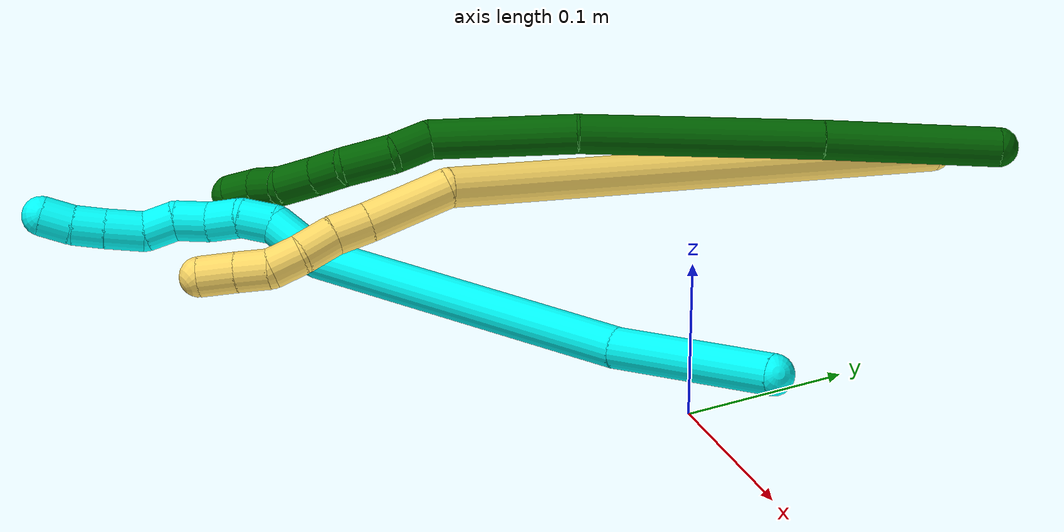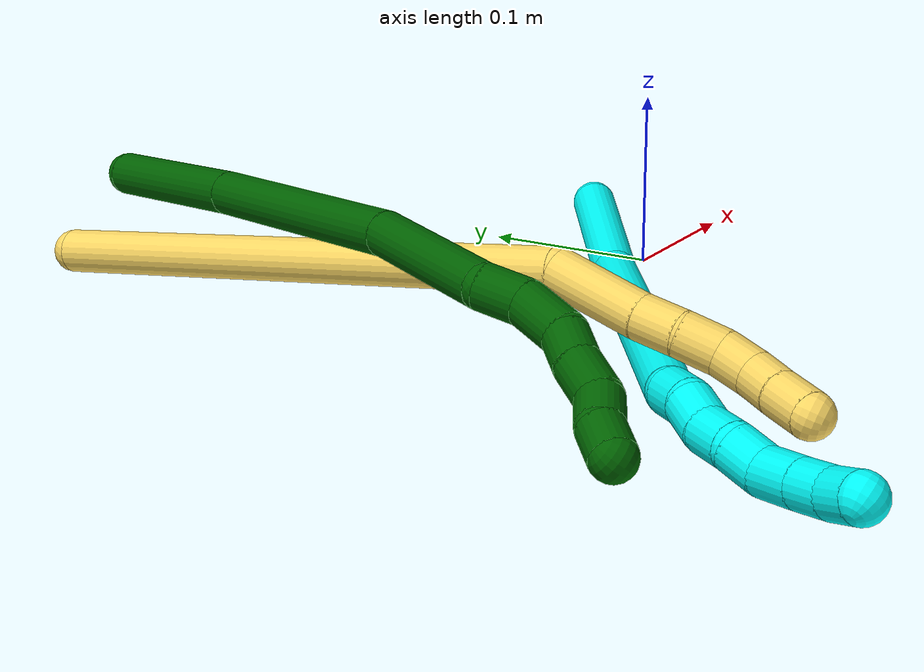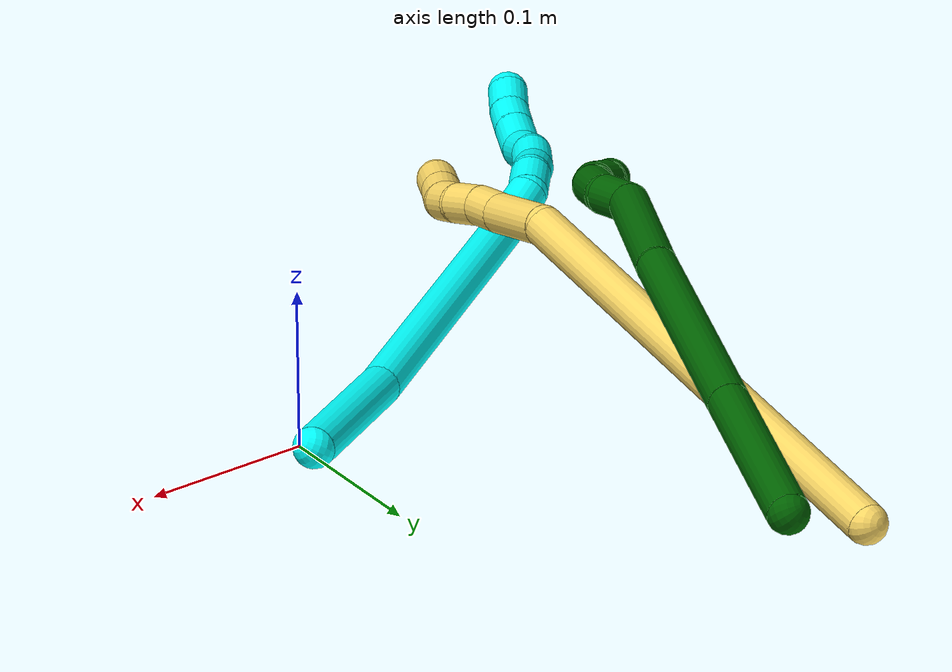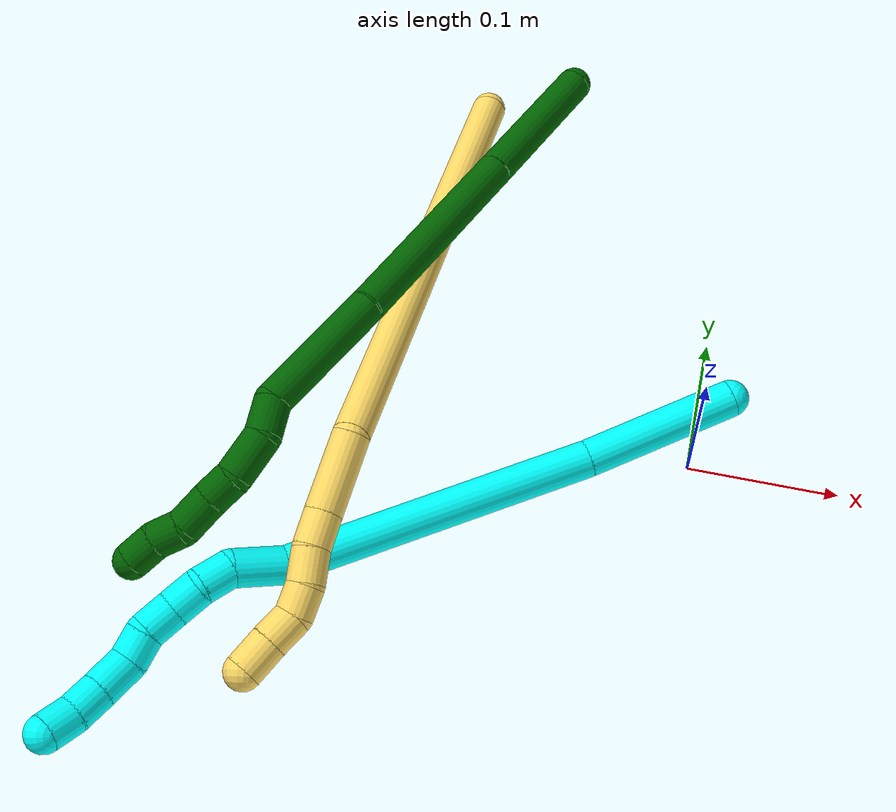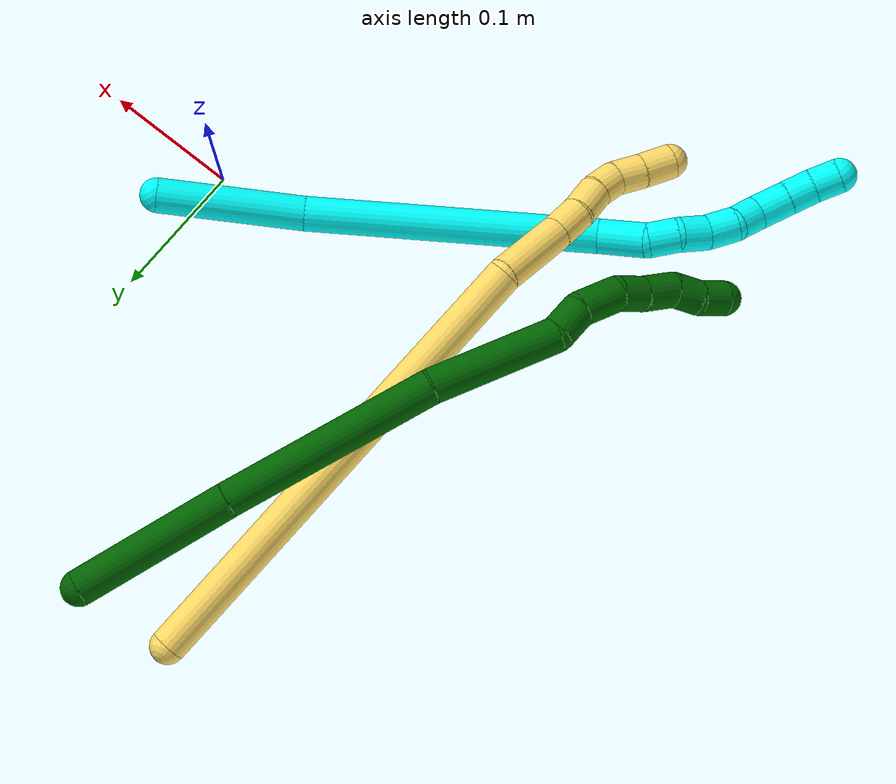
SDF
<sdf version="1.7">
 <world name="default">
  <model name="photoneo_s_sensor">
   <static>1</static>
   <pose>0 0 2 1.57079 1.57079 3.14159</pose>
   <link name="link">
    <inertial><mass>0.1</mass></inertial>
    <sensor name="sensor" type="depth">
     <update_rate>30</update_rate>
     <camera>
      <horizontal_fov>1.22</horizontal_fov>
      <image><width>1920</width><height>1200</height><format>B8G8R8</format></image>
      <clip><near>0.1</near><far>4</far></clip>
      <depth_camera><output>points</output></depth_camera>
     </camera>
     <plugin name="camera_plugin" filename="libgazebo_ros_depth_camera.so">
      <baseline>0.2</baseline>
      <alwaysOn>1</alwaysOn>
      <updateRate>0.0</updateRate>
      <cameraName>camera_ir</cameraName>
      <imageTopicName>/camera/color/image_raw</imageTopicName>
      <cameraInfoTopicName>/camera/color/camera_info</cameraInfoTopicName>
      <depthImageTopicName>/camera/depth/image_raw</depthImageTopicName>
      <depthImageCameraInfoTopicName>/camera/depth/camera_info</depthImageCameraInfoTopicName>
      <pointCloudTopicName>/camera/depth/points</pointCloudTopicName>
      <frameName>fr_optical</frameName>
      <pointCloudCutoff>0.1</pointCloudCutoff>
      <pointCloudCutoffMax>2.0</pointCloudCutoffMax>
      <distortionK1>0</distortionK1>
      <distortionK2>0</distortionK2>
      <distortionK3>0</distortionK3>
      <distortionT1>0</distortionT1>
      <distortionT2>0</distortionT2>
      <CxPrime>0</CxPrime>
      <Cx>0</Cx>
      <Cy>0</Cy>
      <focalLength>0</focalLength>
      <hackBaseline>0</hackBaseline>
     </plugin>
    </sensor>
   </link>
  </model>
  <model name="bin">
   <static>1</static>
   <link name="bottom">
    <collision name="collision-bottom">
     <pose>0 0 -0.01 0 -0 0</pose>
     <geometry><box><size>0.8 0.6 0.02</size></box></geometry>
     <surface>
      <friction><ode><mu>100</mu><mu2>100</mu2></ode></friction>
      <contact><collide_bitmask>65535</collide_bitmask></contact>
     </surface>
    </collision>
   </link>
   <link name="west_wall">
    <collision name="collision-west_wall">
     <pose>-0.41 0 0.1 0 -0 0</pose>
     <geometry><box><size>0.02 0.6 0.2</size></box></geometry>
     <surface>
      <friction><ode><mu>100</mu><mu2>100</mu2></ode></friction>
      <contact><collide_bitmask>65535</collide_bitmask></contact>
     </surface>
    </collision>
   </link>
   <link name="east_wall">
    <collision name="collision-east_wall">
     <pose>0.41 0 0.1 0 -0 0</pose>
     <geometry><box><size>0.02 0.6 0.2</size></box></geometry>
     <surface>
      <friction><ode><mu>100</mu><mu2>100</mu2></ode></friction>
      <contact><collide_bitmask>65535</collide_bitmask></contact>
     </surface>
    </collision>
   </link>
   <link name="south_wall">
    <collision name="collision-south_wall">
     <pose>0 -0.31 0.1 0 -0 0</pose>
     <geometry><box><size>0.8 0.02 0.2</size></box></geometry>
     <surface>
      <friction><ode><mu>100</mu><mu2>100</mu2></ode></friction>
      <contact><collide_bitmask>65535</collide_bitmask></contact>
     </surface>
    </collision>
   </link>
   <link name="north_wall">
    <collision name="collision-north_wall">
     <pose>0 0.31 0.1 0 -0 0</pose>
     <geometry><box><size>0.8 0.02 0.2</size></box></geometry>
     <surface>
      <friction><ode><mu>100</mu><mu2>100</mu2></ode></friction>
      <contact><collide_bitmask>65535</collide_bitmask></contact>
     </surface>
    </collision>
   </link>
  </model>
  <model name="3">
   <static>0</static>
   <link name="3">
    <collision name="collision-cylinder-e_1_1_4">
     <pose>-0.027899 -0.029246 0.033125 0.723285 -0.563164 -0.217981</pose>
     <geometry><cylinder><radius>0.0125</radius><length>0.104517</length></cylinder></geometry>
     <surface>
      <friction><ode><mu>1.16</mu><mu2>1.16</mu2><slip1>0</slip1><slip2>0</slip2></ode></friction>
      <contact><ode><kp>1e+06</kp><kd>1</kd><max_vel>0</max_vel><min_depth>0.001</min_depth></ode></contact>
     </surface>
    </collision>
    <visual name="visual-cylinder-e_1_1_4">
     <pose>-0.027899 -0.029246 0.033125 0.723285 -0.563164 -0.217981</pose>
     <geometry><cylinder><radius>0.0125</radius><length>0.104517</length></cylinder></geometry>
     <material><ambient>0.003922 1 0.996078 1</ambient></material>
    </visual>
    <collision name="collision-cylinder-e_2_4_5">
     <pose>-0.107598 -0.127916 0.124961 0.868806 -0.517866 -0.244561</pose>
     <geometry><cylinder><radius>0.0125</radius><length>0.209284</length></cylinder></geometry>
     <surface>
      <friction><ode><mu>1.16</mu><mu2>1.16</mu2><slip1>0</slip1><slip2>0</slip2></ode></friction>
      <contact><ode><kp>1e+06</kp><kd>1</kd><max_vel>0</max_vel><min_depth>0.001</min_depth></ode></contact>
     </surface>
    </collision>
    <visual name="visual-cylinder-e_2_4_5">
     <pose>-0.107598 -0.127916 0.124961 0.868806 -0.517866 -0.244561</pose>
     <geometry><cylinder><radius>0.0125</radius><length>0.209284</length></cylinder></geometry>
     <material><ambient>0.003922 1 0.996078 1</ambient></material>
    </visual>
    <collision name="collision-cylinder-e_3_5_6">
     <pose>-0.163881 -0.213004 0.191138 1.12604 -0.252772 -0.160053</pose>
     <geometry><cylinder><radius>0.0125</radius><length>0.035845</length></cylinder></geometry>
     <surface>
      <friction><ode><mu>1.16</mu><mu2>1.16</mu2><slip1>0</slip1><slip2>0</slip2></ode></friction>
      <contact><ode><kp>1e+06</kp><kd>1</kd><max_vel>0</max_vel><min_depth>0.001</min_depth></ode></contact>
     </surface>
    </collision>
    <visual name="visual-cylinder-e_3_5_6">
     <pose>-0.163881 -0.213004 0.191138 1.12604 -0.252772 -0.160053</pose>
     <geometry><cylinder><radius>0.0125</radius><length>0.035845</length></cylinder></geometry>
     <material><ambient>0.003922 1 0.996078 1</ambient></material>
    </visual>
    <collision name="collision-cylinder-e_4_6_7">
     <pose>-0.175572 -0.235913 0.202488 1.07871 -0.719942 -0.443158</pose>
     <geometry><cylinder><radius>0.0125</radius><length>0.021866</length></cylinder></geometry>
     <surface>
      <friction><ode><mu>1.16</mu><mu2>1.16</mu2><slip1>0</slip1><slip2>0</slip2></ode></friction>
      <contact><ode><kp>1e+06</kp><kd>1</kd><max_vel>0</max_vel><min_depth>0.001</min_depth></ode></contact>
     </surface>
    </collision>
    <visual name="visual-cylinder-e_4_6_7">
     <pose>-0.175572 -0.235913 0.202488 1.07871 -0.719942 -0.443158</pose>
     <geometry><cylinder><radius>0.0125</radius><length>0.021866</length></cylinder></geometry>
     <material><ambient>0.003922 1 0.996078 1</ambient></material>
    </visual>
    <collision name="collision-cylinder-e_5_7_8">
     <pose>-0.190824 -0.247214 0.212087 0.617237 -0.854057 -0.288121</pose>
     <geometry><cylinder><radius>0.0125</radius><length>0.021338</length></cylinder></geometry>
     <surface>
      <friction><ode><mu>1.16</mu><mu2>1.16</mu2><slip1>0</slip1><slip2>0</slip2></ode></friction>
      <contact><ode><kp>1e+06</kp><kd>1</kd><max_vel>0</max_vel><min_depth>0.001</min_depth></ode></contact>
     </surface>
    </collision>
    <visual name="visual-cylinder-e_5_7_8">
     <pose>-0.190824 -0.247214 0.212087 0.617237 -0.854057 -0.288121</pose>
     <geometry><cylinder><radius>0.0125</radius><length>0.021338</length></cylinder></geometry>
     <material><ambient>0.003922 1 0.996078 1</ambient></material>
    </visual>
    <collision name="collision-cylinder-e_6_8_9">
     <pose>-0.20736 -0.257234 0.221191 1.05399 -0.891377 -0.542297</pose>
     <geometry><cylinder><radius>0.0125</radius><length>0.021831</length></cylinder></geometry>
     <surface>
      <friction><ode><mu>1.16</mu><mu2>1.16</mu2><slip1>0</slip1><slip2>0</slip2></ode></friction>
      <contact><ode><kp>1e+06</kp><kd>1</kd><max_vel>0</max_vel><min_depth>0.001</min_depth></ode></contact>
     </surface>
    </collision>
    <visual name="visual-cylinder-e_6_8_9">
     <pose>-0.20736 -0.257234 0.221191 1.05399 -0.891377 -0.542297</pose>
     <geometry><cylinder><radius>0.0125</radius><length>0.021831</length></cylinder></geometry>
     <material><ambient>0.003922 1 0.996078 1</ambient></material>
    </visual>
    <collision name="collision-cylinder-e_7_9_10">
     <pose>-0.225322 -0.265188 0.227183 0.653047 -1.23765 -0.473285</pose>
     <geometry><cylinder><radius>0.0125</radius><length>0.020044</length></cylinder></geometry>
     <surface>
      <friction><ode><mu>1.16</mu><mu2>1.16</mu2><slip1>0</slip1><slip2>0</slip2></ode></friction>
      <contact><ode><kp>1e+06</kp><kd>1</kd><max_vel>0</max_vel><min_depth>0.001</min_depth></ode></contact>
     </surface>
    </collision>
    <visual name="visual-cylinder-e_7_9_10">
     <pose>-0.225322 -0.265188 0.227183 0.653047 -1.23765 -0.473285</pose>
     <geometry><cylinder><radius>0.0125</radius><length>0.020044</length></cylinder></geometry>
     <material><ambient>0.003922 1 0.996078 1</ambient></material>
    </visual>
    <collision name="collision-cylinder-e_8_10_11">
     <pose>-0.244805 -0.274419 0.231581 1.32776 -0.930547 -0.748505</pose>
     <geometry><cylinder><radius>0.0125</radius><length>0.024969</length></cylinder></geometry>
     <surface>
      <friction><ode><mu>1.16</mu><mu2>1.16</mu2><slip1>0</slip1><slip2>0</slip2></ode></friction>
      <contact><ode><kp>1e+06</kp><kd>1</kd><max_vel>0</max_vel><min_depth>0.001</min_depth></ode></contact>
     </surface>
    </collision>
    <visual name="visual-cylinder-e_8_10_11">
     <pose>-0.244805 -0.274419 0.231581 1.32776 -0.930547 -0.748505</pose>
     <geometry><cylinder><radius>0.0125</radius><length>0.024969</length></cylinder></geometry>
     <material><ambient>0.003922 1 0.996078 1</ambient></material>
    </visual>
    <collision name="collision-cylinder-e_9_11_12">
     <pose>-0.262705 -0.287817 0.234717 1.35639 -0.896566 -0.739338</pose>
     <geometry><cylinder><radius>0.0125</radius><length>0.020194</length></cylinder></geometry>
     <surface>
      <friction><ode><mu>1.16</mu><mu2>1.16</mu2><slip1>0</slip1><slip2>0</slip2></ode></friction>
      <contact><ode><kp>1e+06</kp><kd>1</kd><max_vel>0</max_vel><min_depth>0.001</min_depth></ode></contact>
     </surface>
    </collision>
    <visual name="visual-cylinder-e_9_11_12">
     <pose>-0.262705 -0.287817 0.234717 1.35639 -0.896566 -0.739338</pose>
     <geometry><cylinder><radius>0.0125</radius><length>0.020194</length></cylinder></geometry>
     <material><ambient>0.003922 1 0.996078 1</ambient></material>
    </visual>
    <collision name="collision-cylinder-e_10_12_2">
     <pose>-0.277227 -0.301409 0.237421 1.38942 -0.720491 -0.608292</pose>
     <geometry><cylinder><radius>0.0125</radius><length>0.020113</length></cylinder></geometry>
     <surface>
      <friction><ode><mu>1.16</mu><mu2>1.16</mu2><slip1>0</slip1><slip2>0</slip2></ode></friction>
      <contact><ode><kp>1e+06</kp><kd>1</kd><max_vel>0</max_vel><min_depth>0.001</min_depth></ode></contact>
     </surface>
    </collision>
    <visual name="visual-cylinder-e_10_12_2">
     <pose>-0.277227 -0.301409 0.237421 1.38942 -0.720491 -0.608292</pose>
     <geometry><cylinder><radius>0.0125</radius><length>0.020113</length></cylinder></geometry>
     <material><ambient>0.003922 1 0.996078 1</ambient></material>
    </visual>
    <collision name="collision-sphere-2">
     <pose>-0.283862 -0.308842 0.238785 0 -0 0</pose>
     <geometry><sphere><radius>0.0125</radius></sphere></geometry>
     <surface>
      <friction><ode><mu>1.16</mu><mu2>1.16</mu2><slip1>0</slip1><slip2>0</slip2></ode></friction>
      <contact><ode><kp>1e+06</kp><kd>1</kd><max_vel>0</max_vel><min_depth>0.001</min_depth></ode></contact>
     </surface>
    </collision>
    <visual name="visual-sphere-2">
     <pose>-0.283862 -0.308842 0.238785 0 -0 0</pose>
     <geometry><sphere><radius>0.0125</radius></sphere></geometry>
     <material><ambient>0.003922 1 0.996078 1</ambient></material>
    </visual>
    <collision name="collision-sphere-12">
     <pose>-0.270592 -0.293976 0.236058 0 -0 0</pose>
     <geometry><sphere><radius>0.0125</radius></sphere></geometry>
     <surface>
      <friction><ode><mu>1.16</mu><mu2>1.16</mu2><slip1>0</slip1><slip2>0</slip2></ode></friction>
      <contact><ode><kp>1e+06</kp><kd>1</kd><max_vel>0</max_vel><min_depth>0.001</min_depth></ode></contact>
     </surface>
    </collision>
    <visual name="visual-sphere-12">
     <pose>-0.270592 -0.293976 0.236058 0 -0 0</pose>
     <geometry><sphere><radius>0.0125</radius></sphere></geometry>
     <material><ambient>0.003922 1 0.996078 1</ambient></material>
    </visual>
    <collision name="collision-sphere-11">
     <pose>-0.254817 -0.281658 0.233376 0 -0 0</pose>
     <geometry><sphere><radius>0.0125</radius></sphere></geometry>
     <surface>
      <friction><ode><mu>1.16</mu><mu2>1.16</mu2><slip1>0</slip1><slip2>0</slip2></ode></friction>
      <contact><ode><kp>1e+06</kp><kd>1</kd><max_vel>0</max_vel><min_depth>0.001</min_depth></ode></contact>
     </surface>
    </collision>
    <visual name="visual-sphere-11">
     <pose>-0.254817 -0.281658 0.233376 0 -0 0</pose>
     <geometry><sphere><radius>0.0125</radius></sphere></geometry>
     <material><ambient>0.003922 1 0.996078 1</ambient></material>
    </visual>
    <collision name="collision-sphere-10">
     <pose>-0.234793 -0.26718 0.229786 0 -0 0</pose>
     <geometry><sphere><radius>0.0125</radius></sphere></geometry>
     <surface>
      <friction><ode><mu>1.16</mu><mu2>1.16</mu2><slip1>0</slip1><slip2>0</slip2></ode></friction>
      <contact><ode><kp>1e+06</kp><kd>1</kd><max_vel>0</max_vel><min_depth>0.001</min_depth></ode></contact>
     </surface>
    </collision>
    <visual name="visual-sphere-10">
     <pose>-0.234793 -0.26718 0.229786 0 -0 0</pose>
     <geometry><sphere><radius>0.0125</radius></sphere></geometry>
     <material><ambient>0.003922 1 0.996078 1</ambient></material>
    </visual>
    <collision name="collision-sphere-9">
     <pose>-0.215852 -0.263197 0.22458 0 -0 0</pose>
     <geometry><sphere><radius>0.0125</radius></sphere></geometry>
     <surface>
      <friction><ode><mu>1.16</mu><mu2>1.16</mu2><slip1>0</slip1><slip2>0</slip2></ode></friction>
      <contact><ode><kp>1e+06</kp><kd>1</kd><max_vel>0</max_vel><min_depth>0.001</min_depth></ode></contact>
     </surface>
    </collision>
    <visual name="visual-sphere-9">
     <pose>-0.215852 -0.263197 0.22458 0 -0 0</pose>
     <geometry><sphere><radius>0.0125</radius></sphere></geometry>
     <material><ambient>0.003922 1 0.996078 1</ambient></material>
    </visual>
    <collision name="collision-sphere-4">
     <pose>-0.055798 -0.058492 0.06625 0 -0 0</pose>
     <geometry><sphere><radius>0.0125</radius></sphere></geometry>
     <surface>
      <friction><ode><mu>1.16</mu><mu2>1.16</mu2><slip1>0</slip1><slip2>0</slip2></ode></friction>
      <contact><ode><kp>1e+06</kp><kd>1</kd><max_vel>0</max_vel><min_depth>0.001</min_depth></ode></contact>
     </surface>
    </collision>
    <visual name="visual-sphere-4">
     <pose>-0.055798 -0.058492 0.06625 0 -0 0</pose>
     <geometry><sphere><radius>0.0125</radius></sphere></geometry>
     <material><ambient>0.003922 1 0.996078 1</ambient></material>
    </visual>
    <collision name="collision-sphere-1">
     <geometry><sphere><radius>0.0125</radius></sphere></geometry>
     <surface>
      <friction><ode><mu>1.16</mu><mu2>1.16</mu2><slip1>0</slip1><slip2>0</slip2></ode></friction>
      <contact><ode><kp>1e+06</kp><kd>1</kd><max_vel>0</max_vel><min_depth>0.001</min_depth></ode></contact>
     </surface>
    </collision>
    <visual name="visual-sphere-1">
     <geometry><sphere><radius>0.0125</radius></sphere></geometry>
     <material><ambient>0.003922 1 0.996078 1</ambient></material>
    </visual>
    <collision name="collision-sphere-8">
     <pose>-0.198868 -0.251271 0.217802 0 -0 0</pose>
     <geometry><sphere><radius>0.0125</radius></sphere></geometry>
     <surface>
      <friction><ode><mu>1.16</mu><mu2>1.16</mu2><slip1>0</slip1><slip2>0</slip2></ode></friction>
      <contact><ode><kp>1e+06</kp><kd>1</kd><max_vel>0</max_vel><min_depth>0.001</min_depth></ode></contact>
     </surface>
    </collision>
    <visual name="visual-sphere-8">
     <pose>-0.198868 -0.251271 0.217802 0 -0 0</pose>
     <geometry><sphere><radius>0.0125</radius></sphere></geometry>
     <material><ambient>0.003922 1 0.996078 1</ambient></material>
    </visual>
    <collision name="collision-sphere-5">
     <pose>-0.159399 -0.197339 0.183673 0 -0 0</pose>
     <geometry><sphere><radius>0.0125</radius></sphere></geometry>
     <surface>
      <friction><ode><mu>1.16</mu><mu2>1.16</mu2><slip1>0</slip1><slip2>0</slip2></ode></friction>
      <contact><ode><kp>1e+06</kp><kd>1</kd><max_vel>0</max_vel><min_depth>0.001</min_depth></ode></contact>
     </surface>
    </collision>
    <visual name="visual-sphere-5">
     <pose>-0.159399 -0.197339 0.183673 0 -0 0</pose>
     <geometry><sphere><radius>0.0125</radius></sphere></geometry>
     <material><ambient>0.003922 1 0.996078 1</ambient></material>
    </visual>
    <collision name="collision-sphere-6">
     <pose>-0.168363 -0.228669 0.198604 0 -0 0</pose>
     <geometry><sphere><radius>0.0125</radius></sphere></geometry>
     <surface>
      <friction><ode><mu>1.16</mu><mu2>1.16</mu2><slip1>0</slip1><slip2>0</slip2></ode></friction>
      <contact><ode><kp>1e+06</kp><kd>1</kd><max_vel>0</max_vel><min_depth>0.001</min_depth></ode></contact>
     </surface>
    </collision>
    <visual name="visual-sphere-6">
     <pose>-0.168363 -0.228669 0.198604 0 -0 0</pose>
     <geometry><sphere><radius>0.0125</radius></sphere></geometry>
     <material><ambient>0.003922 1 0.996078 1</ambient></material>
    </visual>
    <collision name="collision-sphere-7">
     <pose>-0.182781 -0.243158 0.206372 0 -0 0</pose>
     <geometry><sphere><radius>0.0125</radius></sphere></geometry>
     <surface>
      <friction><ode><mu>1.16</mu><mu2>1.16</mu2><slip1>0</slip1><slip2>0</slip2></ode></friction>
      <contact><ode><kp>1e+06</kp><kd>1</kd><max_vel>0</max_vel><min_depth>0.001</min_depth></ode></contact>
     </surface>
    </collision>
    <visual name="visual-sphere-7">
     <pose>-0.182781 -0.243158 0.206372 0 -0 0</pose>
     <geometry><sphere><radius>0.0125</radius></sphere></geometry>
     <material><ambient>0.003922 1 0.996078 1</ambient></material>
    </visual>
    <inertial>
     <pose>-0.130512 -0.155107 0.140198 0 -0 0</pose>
     <mass>0.5</mass>
     <inertia>
      <ixx>0.000537</ixx>
      <ixy>0</ixy>
      <ixz>0</ixz>
      <iyy>0.000436</iyy>
      <iyz>0</iyz>
      <izz>0.001043</izz>
     </inertia>
    </inertial>
   </link>
   <pose>0.019708 0.044043 0.025858 -2.23863 -0.335309 1.61275</pose>
  </model>
  <model name="5">
   <static>0</static>
   <link name="5">
    <collision name="collision-cylinder-e_1_1_4">
     <pose>0.003031 -0.081708 0.146613 0.508434 0.018059 0.004692</pose>
     <geometry><cylinder><radius>0.0125</radius><length>0.335744</length></cylinder></geometry>
     <surface>
      <friction><ode><mu>1.16</mu><mu2>1.16</mu2><slip1>0</slip1><slip2>0</slip2></ode></friction>
      <contact><ode><kp>1e+06</kp><kd>1</kd><max_vel>0</max_vel><min_depth>0.001</min_depth></ode></contact>
     </surface>
    </collision>
    <visual name="visual-cylinder-e_1_1_4">
     <pose>0.003031 -0.081708 0.146613 0.508434 0.018059 0.004692</pose>
     <geometry><cylinder><radius>0.0125</radius><length>0.335744</length></cylinder></geometry>
     <material><ambient>1 0.858824 0.4 1</ambient></material>
    </visual>
    <collision name="collision-cylinder-e_2_4_5">
     <pose>0.011958 -0.167195 0.318989 0.145629 0.22267 0.016309</pose>
     <geometry><cylinder><radius>0.0125</radius><length>0.053393</length></cylinder></geometry>
     <surface>
      <friction><ode><mu>1.16</mu><mu2>1.16</mu2><slip1>0</slip1><slip2>0</slip2></ode></friction>
      <contact><ode><kp>1e+06</kp><kd>1</kd><max_vel>0</max_vel><min_depth>0.001</min_depth></ode></contact>
     </surface>
    </collision>
    <visual name="visual-cylinder-e_2_4_5">
     <pose>0.011958 -0.167195 0.318989 0.145629 0.22267 0.016309</pose>
     <geometry><cylinder><radius>0.0125</radius><length>0.053393</length></cylinder></geometry>
     <material><ambient>1 0.858824 0.4 1</ambient></material>
    </visual>
    <collision name="collision-cylinder-e_3_5_6">
     <pose>0.01968 -0.173351 0.356037 0.20764 0.15706 0.016398</pose>
     <geometry><cylinder><radius>0.0125</radius><length>0.023358</length></cylinder></geometry>
     <surface>
      <friction><ode><mu>1.16</mu><mu2>1.16</mu2><slip1>0</slip1><slip2>0</slip2></ode></friction>
      <contact><ode><kp>1e+06</kp><kd>1</kd><max_vel>0</max_vel><min_depth>0.001</min_depth></ode></contact>
     </surface>
    </collision>
    <visual name="visual-cylinder-e_3_5_6">
     <pose>0.01968 -0.173351 0.356037 0.20764 0.15706 0.016398</pose>
     <geometry><cylinder><radius>0.0125</radius><length>0.023358</length></cylinder></geometry>
     <material><ambient>1 0.858824 0.4 1</ambient></material>
    </visual>
    <collision name="collision-cylinder-e_4_6_7">
     <pose>0.022116 -0.176442 0.378787 0.062104 0.052931 0.001645</pose>
     <geometry><cylinder><radius>0.0125</radius><length>0.023001</length></cylinder></geometry>
     <surface>
      <friction><ode><mu>1.16</mu><mu2>1.16</mu2><slip1>0</slip1><slip2>0</slip2></ode></friction>
      <contact><ode><kp>1e+06</kp><kd>1</kd><max_vel>0</max_vel><min_depth>0.001</min_depth></ode></contact>
     </surface>
    </collision>
    <visual name="visual-cylinder-e_4_6_7">
     <pose>0.022116 -0.176442 0.378787 0.062104 0.052931 0.001645</pose>
     <geometry><cylinder><radius>0.0125</radius><length>0.023001</length></cylinder></geometry>
     <material><ambient>1 0.858824 0.4 1</ambient></material>
    </visual>
    <collision name="collision-cylinder-e_5_7_8">
     <pose>0.025543 -0.178033 0.399841 0.091283 0.284736 0.013093</pose>
     <geometry><cylinder><radius>0.0125</radius><length>0.020074</length></cylinder></geometry>
     <surface>
      <friction><ode><mu>1.16</mu><mu2>1.16</mu2><slip1>0</slip1><slip2>0</slip2></ode></friction>
      <contact><ode><kp>1e+06</kp><kd>1</kd><max_vel>0</max_vel><min_depth>0.001</min_depth></ode></contact>
     </surface>
    </collision>
    <visual name="visual-cylinder-e_5_7_8">
     <pose>0.025543 -0.178033 0.399841 0.091283 0.284736 0.013093</pose>
     <geometry><cylinder><radius>0.0125</radius><length>0.020074</length></cylinder></geometry>
     <material><ambient>1 0.858824 0.4 1</ambient></material>
    </visual>
    <collision name="collision-cylinder-e_6_8_9">
     <pose>0.034129 -0.182509 0.417534 0.417946 0.576776 0.125658</pose>
     <geometry><cylinder><radius>0.0125</radius><length>0.021148</length></cylinder></geometry>
     <surface>
      <friction><ode><mu>1.16</mu><mu2>1.16</mu2><slip1>0</slip1><slip2>0</slip2></ode></friction>
      <contact><ode><kp>1e+06</kp><kd>1</kd><max_vel>0</max_vel><min_depth>0.001</min_depth></ode></contact>
     </surface>
    </collision>
    <visual name="visual-cylinder-e_6_8_9">
     <pose>0.034129 -0.182509 0.417534 0.417946 0.576776 0.125658</pose>
     <geometry><cylinder><radius>0.0125</radius><length>0.021148</length></cylinder></geometry>
     <material><ambient>1 0.858824 0.4 1</ambient></material>
    </visual>
    <collision name="collision-cylinder-e_7_9_2">
     <pose>0.045748 -0.190047 0.434895 0.402391 0.526741 0.109876</pose>
     <geometry><cylinder><radius>0.0125</radius><length>0.023284</length></cylinder></geometry>
     <surface>
      <friction><ode><mu>1.16</mu><mu2>1.16</mu2><slip1>0</slip1><slip2>0</slip2></ode></friction>
      <contact><ode><kp>1e+06</kp><kd>1</kd><max_vel>0</max_vel><min_depth>0.001</min_depth></ode></contact>
     </surface>
    </collision>
    <visual name="visual-cylinder-e_7_9_2">
     <pose>0.045748 -0.190047 0.434895 0.402391 0.526741 0.109876</pose>
     <geometry><cylinder><radius>0.0125</radius><length>0.023284</length></cylinder></geometry>
     <material><ambient>1 0.858824 0.4 1</ambient></material>
    </visual>
    <collision name="collision-sphere-2">
     <pose>0.051601 -0.193989 0.444155 0 -0 0</pose>
     <geometry><sphere><radius>0.0125</radius></sphere></geometry>
     <surface>
      <friction><ode><mu>1.16</mu><mu2>1.16</mu2><slip1>0</slip1><slip2>0</slip2></ode></friction>
      <contact><ode><kp>1e+06</kp><kd>1</kd><max_vel>0</max_vel><min_depth>0.001</min_depth></ode></contact>
     </surface>
    </collision>
    <visual name="visual-sphere-2">
     <pose>0.051601 -0.193989 0.444155 0 -0 0</pose>
     <geometry><sphere><radius>0.0125</radius></sphere></geometry>
     <material><ambient>1 0.858824 0.4 1</ambient></material>
    </visual>
    <collision name="collision-sphere-9">
     <pose>0.039895 -0.186106 0.425635 0 -0 0</pose>
     <geometry><sphere><radius>0.0125</radius></sphere></geometry>
     <surface>
      <friction><ode><mu>1.16</mu><mu2>1.16</mu2><slip1>0</slip1><slip2>0</slip2></ode></friction>
      <contact><ode><kp>1e+06</kp><kd>1</kd><max_vel>0</max_vel><min_depth>0.001</min_depth></ode></contact>
     </surface>
    </collision>
    <visual name="visual-sphere-9">
     <pose>0.039895 -0.186106 0.425635 0 -0 0</pose>
     <geometry><sphere><radius>0.0125</radius></sphere></geometry>
     <material><ambient>1 0.858824 0.4 1</ambient></material>
    </visual>
    <collision name="collision-sphere-4">
     <pose>0.006063 -0.163417 0.293227 0 -0 0</pose>
     <geometry><sphere><radius>0.0125</radius></sphere></geometry>
     <surface>
      <friction><ode><mu>1.16</mu><mu2>1.16</mu2><slip1>0</slip1><slip2>0</slip2></ode></friction>
      <contact><ode><kp>1e+06</kp><kd>1</kd><max_vel>0</max_vel><min_depth>0.001</min_depth></ode></contact>
     </surface>
    </collision>
    <visual name="visual-sphere-4">
     <pose>0.006063 -0.163417 0.293227 0 -0 0</pose>
     <geometry><sphere><radius>0.0125</radius></sphere></geometry>
     <material><ambient>1 0.858824 0.4 1</ambient></material>
    </visual>
    <collision name="collision-sphere-1">
     <geometry><sphere><radius>0.0125</radius></sphere></geometry>
     <surface>
      <friction><ode><mu>1.16</mu><mu2>1.16</mu2><slip1>0</slip1><slip2>0</slip2></ode></friction>
      <contact><ode><kp>1e+06</kp><kd>1</kd><max_vel>0</max_vel><min_depth>0.001</min_depth></ode></contact>
     </surface>
    </collision>
    <visual name="visual-sphere-1">
     <geometry><sphere><radius>0.0125</radius></sphere></geometry>
     <material><ambient>1 0.858824 0.4 1</ambient></material>
    </visual>
    <collision name="collision-sphere-8">
     <pose>0.028363 -0.178911 0.409434 0 -0 0</pose>
     <geometry><sphere><radius>0.0125</radius></sphere></geometry>
     <surface>
      <friction><ode><mu>1.16</mu><mu2>1.16</mu2><slip1>0</slip1><slip2>0</slip2></ode></friction>
      <contact><ode><kp>1e+06</kp><kd>1</kd><max_vel>0</max_vel><min_depth>0.001</min_depth></ode></contact>
     </surface>
    </collision>
    <visual name="visual-sphere-8">
     <pose>0.028363 -0.178911 0.409434 0 -0 0</pose>
     <geometry><sphere><radius>0.0125</radius></sphere></geometry>
     <material><ambient>1 0.858824 0.4 1</ambient></material>
    </visual>
    <collision name="collision-sphere-5">
     <pose>0.017854 -0.170974 0.34475 0 -0 0</pose>
     <geometry><sphere><radius>0.0125</radius></sphere></geometry>
     <surface>
      <friction><ode><mu>1.16</mu><mu2>1.16</mu2><slip1>0</slip1><slip2>0</slip2></ode></friction>
      <contact><ode><kp>1e+06</kp><kd>1</kd><max_vel>0</max_vel><min_depth>0.001</min_depth></ode></contact>
     </surface>
    </collision>
    <visual name="visual-sphere-5">
     <pose>0.017854 -0.170974 0.34475 0 -0 0</pose>
     <geometry><sphere><radius>0.0125</radius></sphere></geometry>
     <material><ambient>1 0.858824 0.4 1</ambient></material>
    </visual>
    <collision name="collision-sphere-6">
     <pose>0.021507 -0.175729 0.367325 0 -0 0</pose>
     <geometry><sphere><radius>0.0125</radius></sphere></geometry>
     <surface>
      <friction><ode><mu>1.16</mu><mu2>1.16</mu2><slip1>0</slip1><slip2>0</slip2></ode></friction>
      <contact><ode><kp>1e+06</kp><kd>1</kd><max_vel>0</max_vel><min_depth>0.001</min_depth></ode></contact>
     </surface>
    </collision>
    <visual name="visual-sphere-6">
     <pose>0.021507 -0.175729 0.367325 0 -0 0</pose>
     <geometry><sphere><radius>0.0125</radius></sphere></geometry>
     <material><ambient>1 0.858824 0.4 1</ambient></material>
    </visual>
    <collision name="collision-sphere-7">
     <pose>0.022724 -0.177155 0.390249 0 -0 0</pose>
     <geometry><sphere><radius>0.0125</radius></sphere></geometry>
     <surface>
      <friction><ode><mu>1.16</mu><mu2>1.16</mu2><slip1>0</slip1><slip2>0</slip2></ode></friction>
      <contact><ode><kp>1e+06</kp><kd>1</kd><max_vel>0</max_vel><min_depth>0.001</min_depth></ode></contact>
     </surface>
    </collision>
    <visual name="visual-sphere-7">
     <pose>0.022724 -0.177155 0.390249 0 -0 0</pose>
     <geometry><sphere><radius>0.0125</radius></sphere></geometry>
     <material><ambient>1 0.858824 0.4 1</ambient></material>
    </visual>
    <inertial>
     <pose>0.009849 -0.112652 0.220534 0 -0 0</pose>
     <mass>0.5</mass>
     <inertia>
      <ixx>0.003209</ixx>
      <ixy>0</ixy>
      <ixz>0</ixz>
      <iyy>0.00279</iyy>
      <iyz>0</iyz>
      <izz>0.001517</izz>
     </inertia>
    </inertial>
   </link>
   <pose>-0.19351 0.278133 0.012188 -1.93067 0.397131 -3.12903</pose>
  </model>
  <model name="6">
   <static>0</static>
   <link name="6">
    <collision name="collision-cylinder-e_1_1_4">
     <pose>-0.028182 -0.042415 -0.023279 2.07275 -0.527421 -0.855956</pose>
     <geometry><cylinder><radius>0.0125</radius><length>0.111985</length></cylinder></geometry>
     <surface>
      <friction><ode><mu>1.16</mu><mu2>1.16</mu2><slip1>0</slip1><slip2>0</slip2></ode></friction>
      <contact><ode><kp>1e+06</kp><kd>1</kd><max_vel>0</max_vel><min_depth>0.001</min_depth></ode></contact>
     </surface>
    </collision>
    <visual name="visual-cylinder-e_1_1_4">
     <pose>-0.028182 -0.042415 -0.023279 2.07275 -0.527421 -0.855956</pose>
     <geometry><cylinder><radius>0.0125</radius><length>0.111985</length></cylinder></geometry>
     <material><ambient>0 0.392157 0.003922 1</ambient></material>
    </visual>
    <collision name="collision-cylinder-e_2_4_5">
     <pose>-0.096985 -0.141207 -0.079007 2.09307 -0.558237 -0.920319</pose>
     <geometry><cylinder><radius>0.0125</radius><length>0.15338</length></cylinder></geometry>
     <surface>
      <friction><ode><mu>1.16</mu><mu2>1.16</mu2><slip1>0</slip1><slip2>0</slip2></ode></friction>
      <contact><ode><kp>1e+06</kp><kd>1</kd><max_vel>0</max_vel><min_depth>0.001</min_depth></ode></contact>
     </surface>
    </collision>
    <visual name="visual-cylinder-e_2_4_5">
     <pose>-0.096985 -0.141207 -0.079007 2.09307 -0.558237 -0.920319</pose>
     <geometry><cylinder><radius>0.0125</radius><length>0.15338</length></cylinder></geometry>
     <material><ambient>0 0.392157 0.003922 1</ambient></material>
    </visual>
    <collision name="collision-cylinder-e_3_5_6">
     <pose>-0.167053 -0.226976 -0.131692 2.17374 -0.689897 -1.19928</pose>
     <geometry><cylinder><radius>0.0125</radius><length>0.092531</length></cylinder></geometry>
     <surface>
      <friction><ode><mu>1.16</mu><mu2>1.16</mu2><slip1>0</slip1><slip2>0</slip2></ode></friction>
      <contact><ode><kp>1e+06</kp><kd>1</kd><max_vel>0</max_vel><min_depth>0.001</min_depth></ode></contact>
     </surface>
    </collision>
    <visual name="visual-cylinder-e_3_5_6">
     <pose>-0.167053 -0.226976 -0.131692 2.17374 -0.689897 -1.19928</pose>
     <geometry><cylinder><radius>0.0125</radius><length>0.092531</length></cylinder></geometry>
     <material><ambient>0 0.392157 0.003922 1</ambient></material>
    </visual>
    <collision name="collision-cylinder-e_4_6_7">
     <pose>-0.200251 -0.26349 -0.161508 2.50234 -0.304538 -0.868297</pose>
     <geometry><cylinder><radius>0.0125</radius><length>0.025025</length></cylinder></geometry>
     <surface>
      <friction><ode><mu>1.16</mu><mu2>1.16</mu2><slip1>0</slip1><slip2>0</slip2></ode></friction>
      <contact><ode><kp>1e+06</kp><kd>1</kd><max_vel>0</max_vel><min_depth>0.001</min_depth></ode></contact>
     </surface>
    </collision>
    <visual name="visual-cylinder-e_4_6_7">
     <pose>-0.200251 -0.26349 -0.161508 2.50234 -0.304538 -0.868297</pose>
     <geometry><cylinder><radius>0.0125</radius><length>0.025025</length></cylinder></geometry>
     <material><ambient>0 0.392157 0.003922 1</ambient></material>
    </visual>
    <collision name="collision-cylinder-e_5_7_8">
     <pose>-0.214103 -0.278127 -0.180441 2.46465 -0.699697 -1.60661</pose>
     <geometry><cylinder><radius>0.0125</radius><length>0.031368</length></cylinder></geometry>
     <surface>
      <friction><ode><mu>1.16</mu><mu2>1.16</mu2><slip1>0</slip1><slip2>0</slip2></ode></friction>
      <contact><ode><kp>1e+06</kp><kd>1</kd><max_vel>0</max_vel><min_depth>0.001</min_depth></ode></contact>
     </surface>
    </collision>
    <visual name="visual-cylinder-e_5_7_8">
     <pose>-0.214103 -0.278127 -0.180441 2.46465 -0.699697 -1.60661</pose>
     <geometry><cylinder><radius>0.0125</radius><length>0.031368</length></cylinder></geometry>
     <material><ambient>0 0.392157 0.003922 1</ambient></material>
    </visual>
    <collision name="collision-cylinder-e_6_8_9">
     <pose>-0.232987 -0.287772 -0.194462 2.71382 -1.04211 -2.41804</pose>
     <geometry><cylinder><radius>0.0125</radius><length>0.020344</length></cylinder></geometry>
     <surface>
      <friction><ode><mu>1.16</mu><mu2>1.16</mu2><slip1>0</slip1><slip2>0</slip2></ode></friction>
      <contact><ode><kp>1e+06</kp><kd>1</kd><max_vel>0</max_vel><min_depth>0.001</min_depth></ode></contact>
     </surface>
    </collision>
    <visual name="visual-cylinder-e_6_8_9">
     <pose>-0.232987 -0.287772 -0.194462 2.71382 -1.04211 -2.41804</pose>
     <geometry><cylinder><radius>0.0125</radius><length>0.020344</length></cylinder></geometry>
     <material><ambient>0 0.392157 0.003922 1</ambient></material>
    </visual>
    <collision name="collision-cylinder-e_7_9_10">
     <pose>-0.251748 -0.293941 -0.205548 2.57968 -0.920948 -2.08775</pose>
     <geometry><cylinder><radius>0.0125</radius><length>0.025066</length></cylinder></geometry>
     <surface>
      <friction><ode><mu>1.16</mu><mu2>1.16</mu2><slip1>0</slip1><slip2>0</slip2></ode></friction>
      <contact><ode><kp>1e+06</kp><kd>1</kd><max_vel>0</max_vel><min_depth>0.001</min_depth></ode></contact>
     </surface>
    </collision>
    <visual name="visual-cylinder-e_7_9_10">
     <pose>-0.251748 -0.293941 -0.205548 2.57968 -0.920948 -2.08775</pose>
     <geometry><cylinder><radius>0.0125</radius><length>0.025066</length></cylinder></geometry>
     <material><ambient>0 0.392157 0.003922 1</ambient></material>
    </visual>
    <collision name="collision-cylinder-e_8_10_11">
     <pose>-0.271559 -0.299347 -0.213631 2.45492 -1.35511 -2.30539</pose>
     <geometry><cylinder><radius>0.0125</radius><length>0.02013</length></cylinder></geometry>
     <surface>
      <friction><ode><mu>1.16</mu><mu2>1.16</mu2><slip1>0</slip1><slip2>0</slip2></ode></friction>
      <contact><ode><kp>1e+06</kp><kd>1</kd><max_vel>0</max_vel><min_depth>0.001</min_depth></ode></contact>
     </surface>
    </collision>
    <visual name="visual-cylinder-e_8_10_11">
     <pose>-0.271559 -0.299347 -0.213631 2.45492 -1.35511 -2.30539</pose>
     <geometry><cylinder><radius>0.0125</radius><length>0.02013</length></cylinder></geometry>
     <material><ambient>0 0.392157 0.003922 1</ambient></material>
    </visual>
    <collision name="collision-cylinder-e_9_11_2">
     <pose>-0.290183 -0.303244 -0.21954 2.6037 -1.05878 -2.26111</pose>
     <geometry><cylinder><radius>0.0125</radius><length>0.02017</length></cylinder></geometry>
     <surface>
      <friction><ode><mu>1.16</mu><mu2>1.16</mu2><slip1>0</slip1><slip2>0</slip2></ode></friction>
      <contact><ode><kp>1e+06</kp><kd>1</kd><max_vel>0</max_vel><min_depth>0.001</min_depth></ode></contact>
     </surface>
    </collision>
    <visual name="visual-cylinder-e_9_11_2">
     <pose>-0.290183 -0.303244 -0.21954 2.6037 -1.05878 -2.26111</pose>
     <geometry><cylinder><radius>0.0125</radius><length>0.02017</length></cylinder></geometry>
     <material><ambient>0 0.392157 0.003922 1</ambient></material>
    </visual>
    <collision name="collision-sphere-2">
     <pose>-0.298974 -0.305776 -0.223784 0 -0 0</pose>
     <geometry><sphere><radius>0.0125</radius></sphere></geometry>
     <surface>
      <friction><ode><mu>1.16</mu><mu2>1.16</mu2><slip1>0</slip1><slip2>0</slip2></ode></friction>
      <contact><ode><kp>1e+06</kp><kd>1</kd><max_vel>0</max_vel><min_depth>0.001</min_depth></ode></contact>
     </surface>
    </collision>
    <visual name="visual-sphere-2">
     <pose>-0.298974 -0.305776 -0.223784 0 -0 0</pose>
     <geometry><sphere><radius>0.0125</radius></sphere></geometry>
     <material><ambient>0 0.392157 0.003922 1</ambient></material>
    </visual>
    <collision name="collision-sphere-11">
     <pose>-0.281391 -0.300713 -0.215297 0 -0 0</pose>
     <geometry><sphere><radius>0.0125</radius></sphere></geometry>
     <surface>
      <friction><ode><mu>1.16</mu><mu2>1.16</mu2><slip1>0</slip1><slip2>0</slip2></ode></friction>
      <contact><ode><kp>1e+06</kp><kd>1</kd><max_vel>0</max_vel><min_depth>0.001</min_depth></ode></contact>
     </surface>
    </collision>
    <visual name="visual-sphere-11">
     <pose>-0.281391 -0.300713 -0.215297 0 -0 0</pose>
     <geometry><sphere><radius>0.0125</radius></sphere></geometry>
     <material><ambient>0 0.392157 0.003922 1</ambient></material>
    </visual>
    <collision name="collision-sphere-10">
     <pose>-0.261727 -0.297981 -0.211965 0 -0 0</pose>
     <geometry><sphere><radius>0.0125</radius></sphere></geometry>
     <surface>
      <friction><ode><mu>1.16</mu><mu2>1.16</mu2><slip1>0</slip1><slip2>0</slip2></ode></friction>
      <contact><ode><kp>1e+06</kp><kd>1</kd><max_vel>0</max_vel><min_depth>0.001</min_depth></ode></contact>
     </surface>
    </collision>
    <visual name="visual-sphere-10">
     <pose>-0.261727 -0.297981 -0.211965 0 -0 0</pose>
     <geometry><sphere><radius>0.0125</radius></sphere></geometry>
     <material><ambient>0 0.392157 0.003922 1</ambient></material>
    </visual>
    <collision name="collision-sphere-9">
     <pose>-0.24177 -0.289901 -0.199131 0 -0 0</pose>
     <geometry><sphere><radius>0.0125</radius></sphere></geometry>
     <surface>
      <friction><ode><mu>1.16</mu><mu2>1.16</mu2><slip1>0</slip1><slip2>0</slip2></ode></friction>
      <contact><ode><kp>1e+06</kp><kd>1</kd><max_vel>0</max_vel><min_depth>0.001</min_depth></ode></contact>
     </surface>
    </collision>
    <visual name="visual-sphere-9">
     <pose>-0.24177 -0.289901 -0.199131 0 -0 0</pose>
     <geometry><sphere><radius>0.0125</radius></sphere></geometry>
     <material><ambient>0 0.392157 0.003922 1</ambient></material>
    </visual>
    <collision name="collision-sphere-4">
     <pose>-0.056363 -0.084831 -0.046558 0 -0 0</pose>
     <geometry><sphere><radius>0.0125</radius></sphere></geometry>
     <surface>
      <friction><ode><mu>1.16</mu><mu2>1.16</mu2><slip1>0</slip1><slip2>0</slip2></ode></friction>
      <contact><ode><kp>1e+06</kp><kd>1</kd><max_vel>0</max_vel><min_depth>0.001</min_depth></ode></contact>
     </surface>
    </collision>
    <visual name="visual-sphere-4">
     <pose>-0.056363 -0.084831 -0.046558 0 -0 0</pose>
     <geometry><sphere><radius>0.0125</radius></sphere></geometry>
     <material><ambient>0 0.392157 0.003922 1</ambient></material>
    </visual>
    <collision name="collision-sphere-1">
     <geometry><sphere><radius>0.0125</radius></sphere></geometry>
     <surface>
      <friction><ode><mu>1.16</mu><mu2>1.16</mu2><slip1>0</slip1><slip2>0</slip2></ode></friction>
      <contact><ode><kp>1e+06</kp><kd>1</kd><max_vel>0</max_vel><min_depth>0.001</min_depth></ode></contact>
     </surface>
    </collision>
    <visual name="visual-sphere-1">
     <geometry><sphere><radius>0.0125</radius></sphere></geometry>
     <material><ambient>0 0.392157 0.003922 1</ambient></material>
    </visual>
    <collision name="collision-sphere-8">
     <pose>-0.224203 -0.285644 -0.189794 0 -0 0</pose>
     <geometry><sphere><radius>0.0125</radius></sphere></geometry>
     <surface>
      <friction><ode><mu>1.16</mu><mu2>1.16</mu2><slip1>0</slip1><slip2>0</slip2></ode></friction>
      <contact><ode><kp>1e+06</kp><kd>1</kd><max_vel>0</max_vel><min_depth>0.001</min_depth></ode></contact>
     </surface>
    </collision>
    <visual name="visual-sphere-8">
     <pose>-0.224203 -0.285644 -0.189794 0 -0 0</pose>
     <geometry><sphere><radius>0.0125</radius></sphere></geometry>
     <material><ambient>0 0.392157 0.003922 1</ambient></material>
    </visual>
    <collision name="collision-sphere-5">
     <pose>-0.137607 -0.197583 -0.111457 0 -0 0</pose>
     <geometry><sphere><radius>0.0125</radius></sphere></geometry>
     <surface>
      <friction><ode><mu>1.16</mu><mu2>1.16</mu2><slip1>0</slip1><slip2>0</slip2></ode></friction>
      <contact><ode><kp>1e+06</kp><kd>1</kd><max_vel>0</max_vel><min_depth>0.001</min_depth></ode></contact>
     </surface>
    </collision>
    <visual name="visual-sphere-5">
     <pose>-0.137607 -0.197583 -0.111457 0 -0 0</pose>
     <geometry><sphere><radius>0.0125</radius></sphere></geometry>
     <material><ambient>0 0.392157 0.003922 1</ambient></material>
    </visual>
    <collision name="collision-sphere-6">
     <pose>-0.196499 -0.256368 -0.151928 0 -0 0</pose>
     <geometry><sphere><radius>0.0125</radius></sphere></geometry>
     <surface>
      <friction><ode><mu>1.16</mu><mu2>1.16</mu2><slip1>0</slip1><slip2>0</slip2></ode></friction>
      <contact><ode><kp>1e+06</kp><kd>1</kd><max_vel>0</max_vel><min_depth>0.001</min_depth></ode></contact>
     </surface>
    </collision>
    <visual name="visual-sphere-6">
     <pose>-0.196499 -0.256368 -0.151928 0 -0 0</pose>
     <geometry><sphere><radius>0.0125</radius></sphere></geometry>
     <material><ambient>0 0.392157 0.003922 1</ambient></material>
    </visual>
    <collision name="collision-sphere-7">
     <pose>-0.204003 -0.270611 -0.171088 0 -0 0</pose>
     <geometry><sphere><radius>0.0125</radius></sphere></geometry>
     <surface>
      <friction><ode><mu>1.16</mu><mu2>1.16</mu2><slip1>0</slip1><slip2>0</slip2></ode></friction>
      <contact><ode><kp>1e+06</kp><kd>1</kd><max_vel>0</max_vel><min_depth>0.001</min_depth></ode></contact>
     </surface>
    </collision>
    <visual name="visual-sphere-7">
     <pose>-0.204003 -0.270611 -0.171088 0 -0 0</pose>
     <geometry><sphere><radius>0.0125</radius></sphere></geometry>
     <material><ambient>0 0.392157 0.003922 1</ambient></material>
    </visual>
    <inertial>
     <pose>-0.135172 -0.176187 -0.108899 0 -0 0</pose>
     <mass>0.5</mass>
     <inertia>
      <ixx>-0.000122</ixx>
      <ixy>0</ixy>
      <ixz>0</ixz>
      <iyy>-0.000319</iyy>
      <iyz>0</iyz>
      <izz>0.000626</izz>
     </inertia>
    </inertial>
   </link>
   <pose>-0.129974 0.286584 0.044503 -0.852607 -0.373933 0.253671</pose>
  </model>
 </world>
</sdf>
